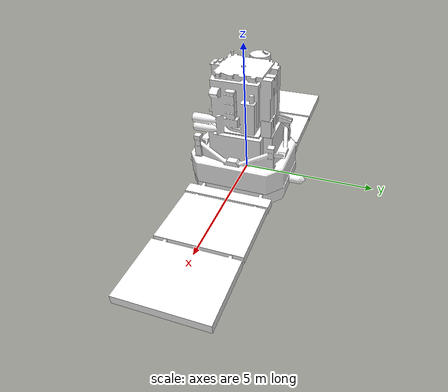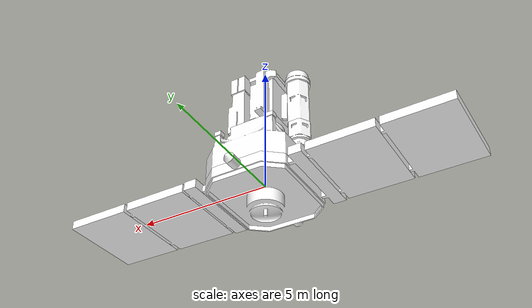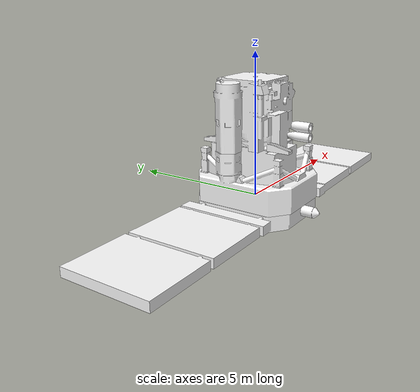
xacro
<?xml version="1.0"?>
<robot name="satellite" xmlns:xacro="http://www.ros.org/wiki/xacro">

  <xacro:property name="scale" value="1.5"/>
  <xacro:property name="mesh_scale" value="${0.02 * scale} ${0.02 * scale} ${0.02 * scale}"/>

  <link name="body_link_1">
    <inertial>
      <mass value="10.0"/>
      <inertia ixx="0" ixy="0" ixz="0" iyy="0" iyz="0" izz="0"/>
    </inertial>
    <visual>
      <origin xyz="${-4.25 * scale} ${-4.6 * scale} ${-1.945 * scale}"/>
      <geometry>
        <mesh filename="model://nbv_space/meshes/SOHO_Body1_20thScale.stl" scale="${mesh_scale}"/>
      </geometry>
      <material name="white">
        <color rgba="1 1 1 1"/>
      </material>
    </visual>
    <collision>
      <origin xyz="${-4.25 * scale} ${-4.6 * scale} ${-1.945 * scale}"/>
      <geometry>
        <mesh filename="model://nbv_space/meshes/SOHO_Body1_20thScale.stl" scale="${mesh_scale}"/>
      </geometry>
    </collision>
  </link>

  <gazebo reference="body_link_1">
    <kinematic>true</kinematic>
  </gazebo>

  <joint name="joint1" type="fixed">
    <parent link="body_link_1"/>
    <child link="body_link_2"/>
    <origin xyz="0 0 ${1.275 * scale}"/>
  </joint>

  <link name="body_link_2">
    <inertial>
      <mass value="10.0"/>
      <inertia ixx="0" ixy="0" ixz="0" iyy="0" iyz="0" izz="0"/>
    </inertial>
    <visual>
      <origin xyz="${-3.94 * scale} ${-4.13 * scale} ${-2.095 * scale}"/>
      <geometry>
        <mesh filename="model://nbv_space/meshes/SOHO_Body2_20thScale.stl" scale="${mesh_scale}"/>
      </geometry>
      <material name="white">
        <color rgba="1 1 1 1"/>
      </material>
    </visual>
    <collision>
      <origin xyz="${-3.94 * scale} ${-4.13 * scale} ${-2.095 * scale}"/>
      <geometry>
        <mesh filename="model://nbv_space/meshes/SOHO_Body2_20thScale.stl" scale="${mesh_scale}"/>
      </geometry>
    </collision>
  </link>

  <joint name="joint_2" type="fixed">
    <parent link="body_link_1"/>
    <child link="panel_link"/>
    <origin xyz="${0.01 * scale} ${-0.02 * scale} ${0.01 * scale}" rpy="0 3.14 0"/>
  </joint>

  <link name="panel_link">
    <inertial>
      <mass value="2.0"/>
      <inertia ixx="0" ixy="0" ixz="0" iyy="0" iyz="0" izz="0"/>
    </inertial>
    <visual>
      <origin xyz="${0.01 * scale} 0 ${-1 * scale}"/>
      <geometry>
        <mesh filename="model://nbv_space/meshes/SOHO_Panel_20thScale.stl" scale="${mesh_scale}"/>
      </geometry>
      <material name="white">
        <color rgba="1 1 1 1"/>
      </material>
    </visual>
    <collision>
      <origin xyz="${0.01 * scale} 0 ${-1 * scale}"/>
      <geometry>
        <mesh filename="model://nbv_space/meshes/SOHO_Panel_20thScale.stl" scale="${mesh_scale}"/>
      </geometry>
    </collision>
  </link>

  <!-- PosePublisher — required for /model/target/pose to actually publish  -->
  <!-- SceneBroadcaster does NOT automatically publish per-model pose       -->
  <!-- topics; that requires this separate plugin. Without it, the bridge's -->
  <!-- ROS-side /model/target/pose endpoint exists but nothing ever         -->
  <!-- publishes to it, so chaser_hcw_dynamics.py's subscription callback   -->
  <!-- never fires.                                                         -->
  <!-- NOTE: publish_model_pose is documented but not actually wired up in  -->
  <!-- the current implementation (see gazebosim/gz-sim#2690) — setting     -->
  <!-- publish_nested_model_pose=true is what's actually required to get    -->
  <!-- the model's own pose published. Both are set here defensively.      -->
  <gazebo>
    <plugin filename="gz-sim-pose-publisher-system" name="gz::sim::systems::PosePublisher">
      <publish_model_pose>true</publish_model_pose>
      <publish_nested_model_pose>true</publish_nested_model_pose>
      <publish_link_pose>false</publish_link_pose>
      <publish_visual_pose>false</publish_visual_pose>
      <publish_collision_pose>false</publish_collision_pose>
      <publish_sensor_pose>false</publish_sensor_pose>
      <use_pose_vector_msg>false</use_pose_vector_msg>
      <update_frequency>50</update_frequency>
    </plugin>
  </gazebo>

</robot>
